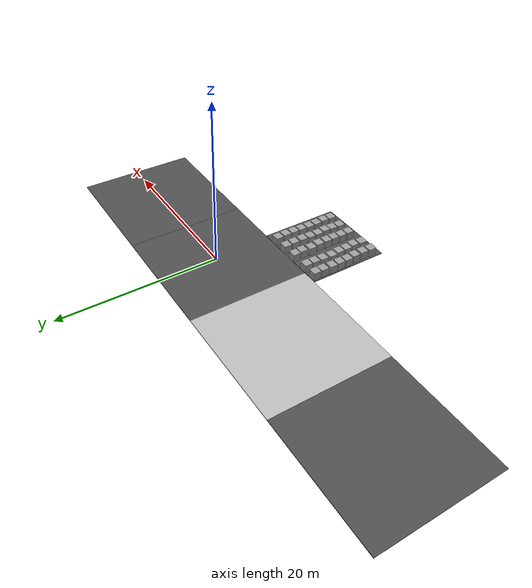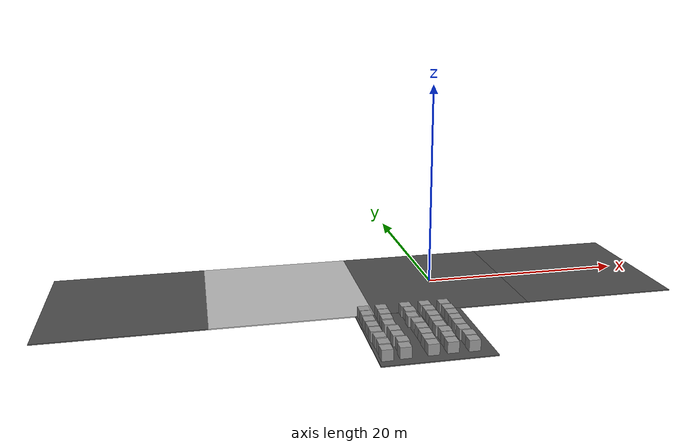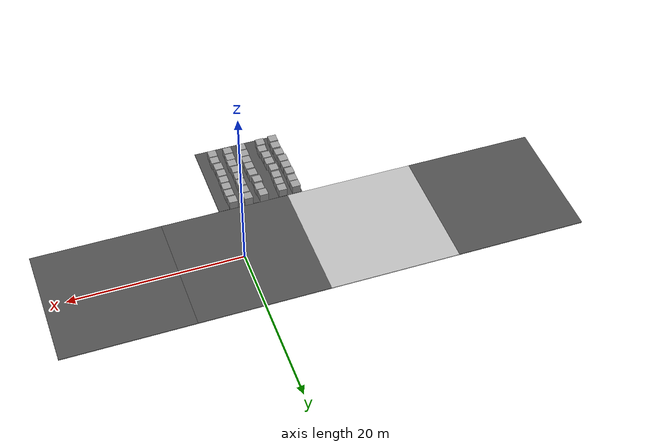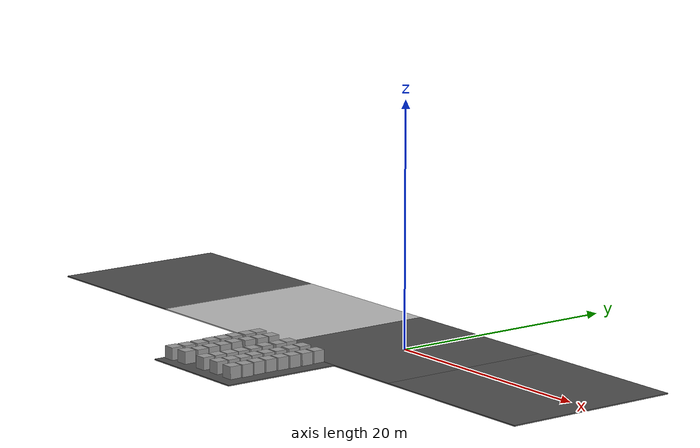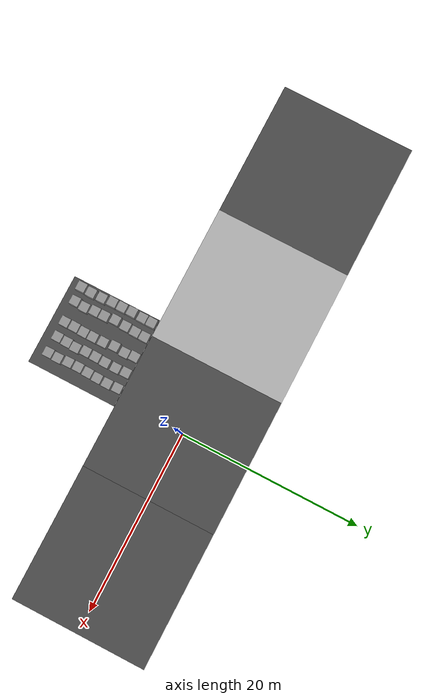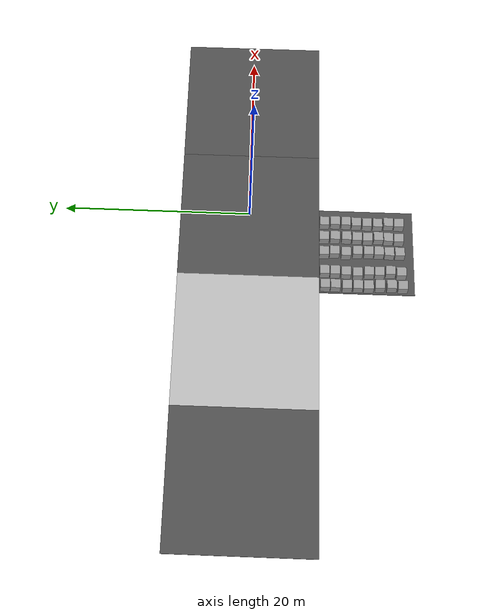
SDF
<sdf version="1.6">
 <world name="road test">
  <scene>
   <ambient>120 120 120 255</ambient>
   <sky><clouds><speed>12</speed></clouds><time>10</time></sky>
   <background>0.7 0.7 0.7 1</background>
   <shadows>1</shadows>
  </scene>
  <model name="highway_plane_15m">
   <static>1</static>
   <link name="link">
    <collision name="collision"><geometry><box><size>15 15 0.1</size></box></geometry></collision>
    <visual name="visual">
     <cast_shadows>0</cast_shadows>
     <geometry><box><size>15 15 0.1</size></box></geometry>
     <material>
      <script>
       <uri>model://highway_plane_15m/materials/scripts</uri>
       <uri>model://highway_plane_15m/materials/textures</uri>
       <name>vrc/highway_15m</name>
      </script>
     </material>
    </visual>
   </link>
   <pose>-15 0 0 0 -0 0</pose>
  </model>
  <model name="highway_plane_15m">
   <static>1</static>
   <link name="link">
    <collision name="collision"><geometry><box><size>15 15 0.1</size></box></geometry></collision>
    <visual name="visual">
     <cast_shadows>0</cast_shadows>
     <geometry><box><size>15 15 0.1</size></box></geometry>
     <material>
      <script>
       <uri>model://highway_plane_15m/materials/scripts</uri>
       <uri>model://highway_plane_15m/materials/textures</uri>
       <name>vrc/highway_15m</name>
      </script>
     </material>
    </visual>
   </link>
   <pose>-15 0 0 0 -0 0</pose>
  </model>
  <model name="highway_plane_15m">
   <static>1</static>
   <link name="link">
    <collision name="collision"><geometry><box><size>15 15 0.1</size></box></geometry></collision>
    <visual name="visual">
     <cast_shadows>0</cast_shadows>
     <geometry><box><size>15 15 0.1</size></box></geometry>
     <material>
      <script>
       <uri>model://highway_plane_15m/materials/scripts</uri>
       <uri>model://highway_plane_15m/materials/textures</uri>
       <name>vrc/highway_15m</name>
      </script>
     </material>
    </visual>
   </link>
   <pose>-15 0 0 0 -0 0</pose>
  </model>
  <model name="highway_plane_15m">
   <static>1</static>
   <link name="link">
    <collision name="collision"><geometry><box><size>15 15 0.1</size></box></geometry></collision>
    <visual name="visual">
     <cast_shadows>0</cast_shadows>
     <geometry><box><size>15 15 0.1</size></box></geometry>
     <material>
      <script>
       <uri>model://highway_plane_15m/materials/scripts</uri>
       <uri>model://highway_plane_15m/materials/textures</uri>
       <name>vrc/highway_15m</name>
      </script>
     </material>
    </visual>
   </link>
   <pose>-15 0 0 0 -0 0</pose>
  </model>
  <model name="highway_plane_15m">
   <static>1</static>
   <link name="link">
    <collision name="collision"><geometry><box><size>15 15 0.1</size></box></geometry></collision>
    <visual name="visual">
     <cast_shadows>0</cast_shadows>
     <geometry><box><size>15 15 0.1</size></box></geometry>
     <material>
      <script>
       <uri>model://highway_plane_15m/materials/scripts</uri>
       <uri>model://highway_plane_15m/materials/textures</uri>
       <name>vrc/highway_15m</name>
      </script>
     </material>
    </visual>
   </link>
   <pose>-15 0 0 0 -0 0</pose>
  </model>
  <light name="sun" type="directional">
   <pose>0 0 10 0 -0 0</pose>
   <diffuse>0.8 0.8 0.8 1</diffuse>
   <specular>0.1 0.1 0.1 1</specular>
   <attenuation>
    <range>1000</range>
    <constant>0.9</constant>
    <linear>0.01</linear>
    <quadratic>0.001</quadratic>
   </attenuation>
   <direction>-0.5 0.5 -1</direction>
  </light>
  <gravity>0 0 -9.8</gravity>
  <magnetic_field>6e-06 2.3e-05 -4.2e-05</magnetic_field>
  <atmosphere type="adiabatic"/>
  <physics name="default_physics" default="0" type="ode">
   <max_step_size>0.001</max_step_size>
   <real_time_factor>1</real_time_factor>
   <real_time_update_rate>1000</real_time_update_rate>
  </physics>
  <spherical_coordinates>
   <surface_model>EARTH_WGS84</surface_model>
   <latitude_deg>0</latitude_deg>
   <longitude_deg>0</longitude_deg>
   <elevation>0</elevation>
   <heading_deg>0</heading_deg>
  </spherical_coordinates>
  <model name="asphalt_plane">
   <static>1</static>
   <link name="link">
    <collision name="collision"><geometry><box><size>10 10 0.1</size></box></geometry></collision>
    <visual name="visual">
     <cast_shadows>0</cast_shadows>
     <geometry><box><size>10 10 0.1</size></box></geometry>
     <material>
      <script>
       <uri>model://asphalt_plane/materials/scripts</uri>
       <uri>model://asphalt_plane/materials/textures</uri>
       <name>vrc/asphalt</name>
      </script>
     </material>
    </visual>
   </link>
   <pose>-4.30239 -12.5237 0 0 -0 0</pose>
  </model>
  <model name="unit_box_0">
   <pose>-1.09581 -8.02105 0.549996 1e-06 1e-05 0.006384</pose>
   <link name="link">
    <inertial>
     <mass>1</mass>
     <inertia>
      <ixx>0.166667</ixx>
      <ixy>0</ixy>
      <ixz>0</ixz>
      <iyy>0.166667</iyy>
      <iyz>0</iyz>
      <izz>0.166667</izz>
     </inertia>
    </inertial>
    <collision name="collision"><geometry><box><size>1 1 1</size></box></geometry></collision>
    <visual name="visual">
     <geometry><box><size>1 1 1</size></box></geometry>
     <material>
      <script><name>Gazebo/Grey</name><uri>file://media/materials/scripts/gazebo.material</uri></script>
     </material>
    </visual>
   </link>
  </model>
  <model name="unit_box_1">
   <pose>-1.0275 -9.17623 0.55 0 -0 1e-05</pose>
   <link name="link">
    <inertial>
     <mass>1</mass>
     <inertia>
      <ixx>0.166667</ixx>
      <ixy>0</ixy>
      <ixz>0</ixz>
      <iyy>0.166667</iyy>
      <iyz>0</iyz>
      <izz>0.166667</izz>
     </inertia>
    </inertial>
    <collision name="collision"><geometry><box><size>1 1 1</size></box></geometry></collision>
    <visual name="visual">
     <geometry><box><size>1 1 1</size></box></geometry>
     <material>
      <script><name>Gazebo/Grey</name><uri>file://media/materials/scripts/gazebo.material</uri></script>
     </material>
    </visual>
   </link>
  </model>
  <model name="unit_box_2">
   <pose>-1.04698 -10.3266 0.55 0 -0 1e-05</pose>
   <link name="link">
    <inertial>
     <mass>1</mass>
     <inertia>
      <ixx>0.166667</ixx>
      <ixy>0</ixy>
      <ixz>0</ixz>
      <iyy>0.166667</iyy>
      <iyz>0</iyz>
      <izz>0.166667</izz>
     </inertia>
    </inertial>
    <collision name="collision"><geometry><box><size>1 1 1</size></box></geometry></collision>
    <visual name="visual">
     <geometry><box><size>1 1 1</size></box></geometry>
     <material>
      <script><name>Gazebo/Grey</name><uri>file://media/materials/scripts/gazebo.material</uri></script>
     </material>
    </visual>
   </link>
  </model>
  <model name="unit_box_3">
   <pose>-1.09509 -11.4368 0.55 0 -0 1e-05</pose>
   <link name="link">
    <inertial>
     <mass>1</mass>
     <inertia>
      <ixx>0.166667</ixx>
      <ixy>0</ixy>
      <ixz>0</ixz>
      <iyy>0.166667</iyy>
      <iyz>0</iyz>
      <izz>0.166667</izz>
     </inertia>
    </inertial>
    <collision name="collision"><geometry><box><size>1 1 1</size></box></geometry></collision>
    <visual name="visual">
     <geometry><box><size>1 1 1</size></box></geometry>
     <material>
      <script><name>Gazebo/Grey</name><uri>file://media/materials/scripts/gazebo.material</uri></script>
     </material>
    </visual>
   </link>
  </model>
  <model name="unit_box_4">
   <pose>-1.1438 -12.5689 0.55 0 -0 1e-05</pose>
   <link name="link">
    <inertial>
     <mass>1</mass>
     <inertia>
      <ixx>0.166667</ixx>
      <ixy>0</ixy>
      <ixz>0</ixz>
      <iyy>0.166667</iyy>
      <iyz>0</iyz>
      <izz>0.166667</izz>
     </inertia>
    </inertial>
    <collision name="collision"><geometry><box><size>1 1 1</size></box></geometry></collision>
    <visual name="visual">
     <geometry><box><size>1 1 1</size></box></geometry>
     <material>
      <script><name>Gazebo/Grey</name><uri>file://media/materials/scripts/gazebo.material</uri></script>
     </material>
    </visual>
   </link>
  </model>
  <model name="unit_box_5">
   <pose>-1.12849 -13.6989 0.55 0 -0 1e-05</pose>
   <link name="link">
    <inertial>
     <mass>1</mass>
     <inertia>
      <ixx>0.166667</ixx>
      <ixy>0</ixy>
      <ixz>0</ixz>
      <iyy>0.166667</iyy>
      <iyz>0</iyz>
      <izz>0.166667</izz>
     </inertia>
    </inertial>
    <collision name="collision"><geometry><box><size>1 1 1</size></box></geometry></collision>
    <visual name="visual">
     <geometry><box><size>1 1 1</size></box></geometry>
     <material>
      <script><name>Gazebo/Grey</name><uri>file://media/materials/scripts/gazebo.material</uri></script>
     </material>
    </visual>
   </link>
  </model>
  <model name="unit_box_6">
   <pose>-1.01815 -14.8621 0.55 0 -0 1e-05</pose>
   <link name="link">
    <inertial>
     <mass>1</mass>
     <inertia>
      <ixx>0.166667</ixx>
      <ixy>0</ixy>
      <ixz>0</ixz>
      <iyy>0.166667</iyy>
      <iyz>0</iyz>
      <izz>0.166667</izz>
     </inertia>
    </inertial>
    <collision name="collision"><geometry><box><size>1 1 1</size></box></geometry></collision>
    <visual name="visual">
     <geometry><box><size>1 1 1</size></box></geometry>
     <material>
      <script><name>Gazebo/Grey</name><uri>file://media/materials/scripts/gazebo.material</uri></script>
     </material>
    </visual>
   </link>
  </model>
  <model name="unit_box_7">
   <pose>-1.06504 -15.9688 0.55 0 -0 1e-05</pose>
   <link name="link">
    <inertial>
     <mass>1</mass>
     <inertia>
      <ixx>0.166667</ixx>
      <ixy>0</ixy>
      <ixz>0</ixz>
      <iyy>0.166667</iyy>
      <iyz>0</iyz>
      <izz>0.166667</izz>
     </inertia>
    </inertial>
    <collision name="collision"><geometry><box><size>1 1 1</size></box></geometry></collision>
    <visual name="visual">
     <geometry><box><size>1 1 1</size></box></geometry>
     <material>
      <script><name>Gazebo/Grey</name><uri>file://media/materials/scripts/gazebo.material</uri></script>
     </material>
    </visual>
   </link>
  </model>
  <model name="unit_box_8">
   <pose>-2.89118 -7.99853 0.55 0 -0 4.4e-05</pose>
   <link name="link">
    <inertial>
     <mass>1</mass>
     <inertia>
      <ixx>0.166667</ixx>
      <ixy>0</ixy>
      <ixz>0</ixz>
      <iyy>0.166667</iyy>
      <iyz>0</iyz>
      <izz>0.166667</izz>
     </inertia>
    </inertial>
    <collision name="collision"><geometry><box><size>1 1 1</size></box></geometry></collision>
    <visual name="visual">
     <geometry><box><size>1 1 1</size></box></geometry>
     <material>
      <script><name>Gazebo/Grey</name><uri>file://media/materials/scripts/gazebo.material</uri></script>
     </material>
    </visual>
   </link>
  </model>
  <model name="unit_box_9">
   <pose>-2.83189 -9.14472 0.55 0 -0 1e-05</pose>
   <link name="link">
    <inertial>
     <mass>1</mass>
     <inertia>
      <ixx>0.166667</ixx>
      <ixy>0</ixy>
      <ixz>0</ixz>
      <iyy>0.166667</iyy>
      <iyz>0</iyz>
      <izz>0.166667</izz>
     </inertia>
    </inertial>
    <collision name="collision"><geometry><box><size>1 1 1</size></box></geometry></collision>
    <visual name="visual">
     <geometry><box><size>1 1 1</size></box></geometry>
     <material>
      <script><name>Gazebo/Grey</name><uri>file://media/materials/scripts/gazebo.material</uri></script>
     </material>
    </visual>
   </link>
  </model>
  <model name="unit_box_10">
   <pose>-2.83388 -10.3663 0.55 0 -0 1e-05</pose>
   <link name="link">
    <inertial>
     <mass>1</mass>
     <inertia>
      <ixx>0.166667</ixx>
      <ixy>0</ixy>
      <ixz>0</ixz>
      <iyy>0.166667</iyy>
      <iyz>0</iyz>
      <izz>0.166667</izz>
     </inertia>
    </inertial>
    <collision name="collision"><geometry><box><size>1 1 1</size></box></geometry></collision>
    <visual name="visual">
     <geometry><box><size>1 1 1</size></box></geometry>
     <material>
      <script><name>Gazebo/Grey</name><uri>file://media/materials/scripts/gazebo.material</uri></script>
     </material>
    </visual>
   </link>
  </model>
  <model name="unit_box_11">
   <pose>-2.88583 -11.4916 0.55 0 -0 1e-05</pose>
   <link name="link">
    <inertial>
     <mass>1</mass>
     <inertia>
      <ixx>0.166667</ixx>
      <ixy>0</ixy>
      <ixz>0</ixz>
      <iyy>0.166667</iyy>
      <iyz>0</iyz>
      <izz>0.166667</izz>
     </inertia>
    </inertial>
    <collision name="collision"><geometry><box><size>1 1 1</size></box></geometry></collision>
    <visual name="visual">
     <geometry><box><size>1 1 1</size></box></geometry>
     <material>
      <script><name>Gazebo/Grey</name><uri>file://media/materials/scripts/gazebo.material</uri></script>
     </material>
    </visual>
   </link>
  </model>
  <model name="unit_box_12">
   <pose>-2.91022 -12.6251 0.55 0 -0 1e-05</pose>
   <link name="link">
    <inertial>
     <mass>1</mass>
     <inertia>
      <ixx>0.166667</ixx>
      <ixy>0</ixy>
      <ixz>0</ixz>
      <iyy>0.166667</iyy>
      <iyz>0</iyz>
      <izz>0.166667</izz>
     </inertia>
    </inertial>
    <collision name="collision"><geometry><box><size>1 1 1</size></box></geometry></collision>
    <visual name="visual">
     <geometry><box><size>1 1 1</size></box></geometry>
     <material>
      <script><name>Gazebo/Grey</name><uri>file://media/materials/scripts/gazebo.material</uri></script>
     </material>
    </visual>
   </link>
  </model>
  <model name="unit_box_13">
   <pose>-2.78929 -13.763 0.55 0 -0 1e-05</pose>
   <link name="link">
    <inertial>
     <mass>1</mass>
     <inertia>
      <ixx>0.166667</ixx>
      <ixy>0</ixy>
      <ixz>0</ixz>
      <iyy>0.166667</iyy>
      <iyz>0</iyz>
      <izz>0.166667</izz>
     </inertia>
    </inertial>
    <collision name="collision"><geometry><box><size>1 1 1</size></box></geometry></collision>
    <visual name="visual">
     <geometry><box><size>1 1 1</size></box></geometry>
     <material>
      <script><name>Gazebo/Grey</name><uri>file://media/materials/scripts/gazebo.material</uri></script>
     </material>
    </visual>
   </link>
  </model>
  <model name="unit_box_14">
   <pose>-2.86553 -14.8187 0.55 0 -0 1e-05</pose>
   <link name="link">
    <inertial>
     <mass>1</mass>
     <inertia>
      <ixx>0.166667</ixx>
      <ixy>0</ixy>
      <ixz>0</ixz>
      <iyy>0.166667</iyy>
      <iyz>0</iyz>
      <izz>0.166667</izz>
     </inertia>
    </inertial>
    <collision name="collision"><geometry><box><size>1 1 1</size></box></geometry></collision>
    <visual name="visual">
     <geometry><box><size>1 1 1</size></box></geometry>
     <material>
      <script><name>Gazebo/Grey</name><uri>file://media/materials/scripts/gazebo.material</uri></script>
     </material>
    </visual>
   </link>
  </model>
  <model name="unit_box_15">
   <pose>-2.91565 -15.9209 0.55 0 -0 1e-05</pose>
   <link name="link">
    <inertial>
     <mass>1</mass>
     <inertia>
      <ixx>0.166667</ixx>
      <ixy>0</ixy>
      <ixz>0</ixz>
      <iyy>0.166667</iyy>
      <iyz>0</iyz>
      <izz>0.166667</izz>
     </inertia>
    </inertial>
    <collision name="collision"><geometry><box><size>1 1 1</size></box></geometry></collision>
    <visual name="visual">
     <geometry><box><size>1 1 1</size></box></geometry>
     <material>
      <script><name>Gazebo/Grey</name><uri>file://media/materials/scripts/gazebo.material</uri></script>
     </material>
    </visual>
   </link>
  </model>
  <model name="unit_box_16">
   <pose>-4.72709 -7.99245 0.55 0 0 -2.9e-05</pose>
   <link name="link">
    <inertial>
     <mass>1</mass>
     <inertia>
      <ixx>0.166667</ixx>
      <ixy>0</ixy>
      <ixz>0</ixz>
      <iyy>0.166667</iyy>
      <iyz>0</iyz>
      <izz>0.166667</izz>
     </inertia>
    </inertial>
    <collision name="collision"><geometry><box><size>1 1 1</size></box></geometry></collision>
    <visual name="visual">
     <geometry><box><size>1 1 1</size></box></geometry>
     <material>
      <script><name>Gazebo/Grey</name><uri>file://media/materials/scripts/gazebo.material</uri></script>
     </material>
    </visual>
   </link>
  </model>
  <model name="unit_box_17">
   <pose>-4.62828 -9.07829 0.55 0 -0 1e-05</pose>
   <link name="link">
    <inertial>
     <mass>1</mass>
     <inertia>
      <ixx>0.166667</ixx>
      <ixy>0</ixy>
      <ixz>0</ixz>
      <iyy>0.166667</iyy>
      <iyz>0</iyz>
      <izz>0.166667</izz>
     </inertia>
    </inertial>
    <collision name="collision"><geometry><box><size>1 1 1</size></box></geometry></collision>
    <visual name="visual">
     <geometry><box><size>1 1 1</size></box></geometry>
     <material>
      <script><name>Gazebo/Grey</name><uri>file://media/materials/scripts/gazebo.material</uri></script>
     </material>
    </visual>
   </link>
  </model>
  <model name="unit_box_18">
   <pose>-4.74171 -10.3008 0.55 0 -0 1e-05</pose>
   <link name="link">
    <inertial>
     <mass>1</mass>
     <inertia>
      <ixx>0.166667</ixx>
      <ixy>0</ixy>
      <ixz>0</ixz>
      <iyy>0.166667</iyy>
      <iyz>0</iyz>
      <izz>0.166667</izz>
     </inertia>
    </inertial>
    <collision name="collision"><geometry><box><size>1 1 1</size></box></geometry></collision>
    <visual name="visual">
     <geometry><box><size>1 1 1</size></box></geometry>
     <material>
      <script><name>Gazebo/Grey</name><uri>file://media/materials/scripts/gazebo.material</uri></script>
     </material>
    </visual>
   </link>
  </model>
  <model name="unit_box_19">
   <pose>-4.57431 -11.5252 0.55 0 -0 1e-05</pose>
   <link name="link">
    <inertial>
     <mass>1</mass>
     <inertia>
      <ixx>0.166667</ixx>
      <ixy>0</ixy>
      <ixz>0</ixz>
      <iyy>0.166667</iyy>
      <iyz>0</iyz>
      <izz>0.166667</izz>
     </inertia>
    </inertial>
    <collision name="collision"><geometry><box><size>1 1 1</size></box></geometry></collision>
    <visual name="visual">
     <geometry><box><size>1 1 1</size></box></geometry>
     <material>
      <script><name>Gazebo/Grey</name><uri>file://media/materials/scripts/gazebo.material</uri></script>
     </material>
    </visual>
   </link>
  </model>
  <model name="unit_box_20">
   <pose>-4.55516 -12.6984 0.55 0 -0 1e-05</pose>
   <link name="link">
    <inertial>
     <mass>1</mass>
     <inertia>
      <ixx>0.166667</ixx>
      <ixy>0</ixy>
      <ixz>0</ixz>
      <iyy>0.166667</iyy>
      <iyz>0</iyz>
      <izz>0.166667</izz>
     </inertia>
    </inertial>
    <collision name="collision"><geometry><box><size>1 1 1</size></box></geometry></collision>
    <visual name="visual">
     <geometry><box><size>1 1 1</size></box></geometry>
     <material>
      <script><name>Gazebo/Grey</name><uri>file://media/materials/scripts/gazebo.material</uri></script>
     </material>
    </visual>
   </link>
  </model>
  <model name="unit_box_21">
   <pose>-4.55515 -13.7852 0.55 0 -0 1e-05</pose>
   <link name="link">
    <inertial>
     <mass>1</mass>
     <inertia>
      <ixx>0.166667</ixx>
      <ixy>0</ixy>
      <ixz>0</ixz>
      <iyy>0.166667</iyy>
      <iyz>0</iyz>
      <izz>0.166667</izz>
     </inertia>
    </inertial>
    <collision name="collision"><geometry><box><size>1 1 1</size></box></geometry></collision>
    <visual name="visual">
     <geometry><box><size>1 1 1</size></box></geometry>
     <material>
      <script><name>Gazebo/Grey</name><uri>file://media/materials/scripts/gazebo.material</uri></script>
     </material>
    </visual>
   </link>
  </model>
  <model name="unit_box_22">
   <pose>-4.60754 -14.8791 0.55 0 -0 1e-05</pose>
   <link name="link">
    <inertial>
     <mass>1</mass>
     <inertia>
      <ixx>0.166667</ixx>
      <ixy>0</ixy>
      <ixz>0</ixz>
      <iyy>0.166667</iyy>
      <iyz>0</iyz>
      <izz>0.166667</izz>
     </inertia>
    </inertial>
    <collision name="collision"><geometry><box><size>1 1 1</size></box></geometry></collision>
    <visual name="visual">
     <geometry><box><size>1 1 1</size></box></geometry>
     <material>
      <script><name>Gazebo/Grey</name><uri>file://media/materials/scripts/gazebo.material</uri></script>
     </material>
    </visual>
   </link>
  </model>
  <model name="unit_box_23">
   <pose>-4.60951 -15.9922 0.55 0 -0 1e-05</pose>
   <link name="link">
    <inertial>
     <mass>1</mass>
     <inertia>
      <ixx>0.166667</ixx>
      <ixy>0</ixy>
      <ixz>0</ixz>
      <iyy>0.166667</iyy>
      <iyz>0</iyz>
      <izz>0.166667</izz>
     </inertia>
    </inertial>
    <collision name="collision"><geometry><box><size>1 1 1</size></box></geometry></collision>
    <visual name="visual">
     <geometry><box><size>1 1 1</size></box></geometry>
     <material>
      <script><name>Gazebo/Grey</name><uri>file://media/materials/scripts/gazebo.material</uri></script>
     </material>
    </visual>
   </link>
  </model>
  <model name="unit_box_24">
   <pose>-7.00154 -8.04263 0.55 0 -0 1e-05</pose>
   <link name="link">
    <inertial>
     <mass>1</mass>
     <inertia>
      <ixx>0.166667</ixx>
      <ixy>0</ixy>
      <ixz>0</ixz>
      <iyy>0.166667</iyy>
      <iyz>0</iyz>
      <izz>0.166667</izz>
     </inertia>
    </inertial>
    <collision name="collision"><geometry><box><size>1 1 1</size></box></geometry></collision>
    <visual name="visual">
     <geometry><box><size>1 1 1</size></box></geometry>
     <material>
      <script><name>Gazebo/Grey</name><uri>file://media/materials/scripts/gazebo.material</uri></script>
     </material>
    </visual>
   </link>
  </model>
  <model name="unit_box_25">
   <pose>-7.01466 -9.13049 0.55 0 -0 1e-05</pose>
   <link name="link">
    <inertial>
     <mass>1</mass>
     <inertia>
      <ixx>0.166667</ixx>
      <ixy>0</ixy>
      <ixz>0</ixz>
      <iyy>0.166667</iyy>
      <iyz>0</iyz>
      <izz>0.166667</izz>
     </inertia>
    </inertial>
    <collision name="collision"><geometry><box><size>1 1 1</size></box></geometry></collision>
    <visual name="visual">
     <geometry><box><size>1 1 1</size></box></geometry>
     <material>
      <script><name>Gazebo/Grey</name><uri>file://media/materials/scripts/gazebo.material</uri></script>
     </material>
    </visual>
   </link>
  </model>
  <model name="unit_box_26">
   <pose>-7.07572 -10.2798 0.55 0 -0 1e-05</pose>
   <link name="link">
    <inertial>
     <mass>1</mass>
     <inertia>
      <ixx>0.166667</ixx>
      <ixy>0</ixy>
      <ixz>0</ixz>
      <iyy>0.166667</iyy>
      <iyz>0</iyz>
      <izz>0.166667</izz>
     </inertia>
    </inertial>
    <collision name="collision"><geometry><box><size>1 1 1</size></box></geometry></collision>
    <visual name="visual">
     <geometry><box><size>1 1 1</size></box></geometry>
     <material>
      <script><name>Gazebo/Grey</name><uri>file://media/materials/scripts/gazebo.material</uri></script>
     </material>
    </visual>
   </link>
  </model>
  <model name="unit_box_27">
   <pose>-7.16392 -11.5056 0.55 0 -0 1e-05</pose>
   <link name="link">
    <inertial>
     <mass>1</mass>
     <inertia>
      <ixx>0.166667</ixx>
      <ixy>0</ixy>
      <ixz>0</ixz>
      <iyy>0.166667</iyy>
      <iyz>0</iyz>
      <izz>0.166667</izz>
     </inertia>
    </inertial>
    <collision name="collision"><geometry><box><size>1 1 1</size></box></geometry></collision>
    <visual name="visual">
     <geometry><box><size>1 1 1</size></box></geometry>
     <material>
      <script><name>Gazebo/Grey</name><uri>file://media/materials/scripts/gazebo.material</uri></script>
     </material>
    </visual>
   </link>
  </model>
  <model name="unit_box_28">
   <pose>-7.01093 -12.6974 0.55 0 -0 1e-05</pose>
   <link name="link">
    <inertial>
     <mass>1</mass>
     <inertia>
      <ixx>0.166667</ixx>
      <ixy>0</ixy>
      <ixz>0</ixz>
      <iyy>0.166667</iyy>
      <iyz>0</iyz>
      <izz>0.166667</izz>
     </inertia>
    </inertial>
    <collision name="collision"><geometry><box><size>1 1 1</size></box></geometry></collision>
    <visual name="visual">
     <geometry><box><size>1 1 1</size></box></geometry>
     <material>
      <script><name>Gazebo/Grey</name><uri>file://media/materials/scripts/gazebo.material</uri></script>
     </material>
    </visual>
   </link>
  </model>
  <model name="unit_box_29">
   <pose>-7.00257 -13.7991 0.55 0 -0 1e-05</pose>
   <link name="link">
    <inertial>
     <mass>1</mass>
     <inertia>
      <ixx>0.166667</ixx>
      <ixy>0</ixy>
      <ixz>0</ixz>
      <iyy>0.166667</iyy>
      <iyz>0</iyz>
      <izz>0.166667</izz>
     </inertia>
    </inertial>
    <collision name="collision"><geometry><box><size>1 1 1</size></box></geometry></collision>
    <visual name="visual">
     <geometry><box><size>1 1 1</size></box></geometry>
     <material>
      <script><name>Gazebo/Grey</name><uri>file://media/materials/scripts/gazebo.material</uri></script>
     </material>
    </visual>
   </link>
  </model>
  <model name="unit_box_30">
   <pose>-6.86328 -14.9526 0.55 0 -0 1e-05</pose>
   <link name="link">
    <inertial>
     <mass>1</mass>
     <inertia>
      <ixx>0.166667</ixx>
      <ixy>0</ixy>
      <ixz>0</ixz>
      <iyy>0.166667</iyy>
      <iyz>0</iyz>
      <izz>0.166667</izz>
     </inertia>
    </inertial>
    <collision name="collision"><geometry><box><size>1 1 1</size></box></geometry></collision>
    <visual name="visual">
     <geometry><box><size>1 1 1</size></box></geometry>
     <material>
      <script><name>Gazebo/Grey</name><uri>file://media/materials/scripts/gazebo.material</uri></script>
     </material>
    </visual>
   </link>
  </model>
  <model name="unit_box_31">
   <pose>-6.98951 -16.0888 0.55 0 -0 1e-05</pose>
   <link name="link">
    <inertial>
     <mass>1</mass>
     <inertia>
      <ixx>0.166667</ixx>
      <ixy>0</ixy>
      <ixz>0</ixz>
      <iyy>0.166667</iyy>
      <iyz>0</iyz>
      <izz>0.166667</izz>
     </inertia>
    </inertial>
    <collision name="collision"><geometry><box><size>1 1 1</size></box></geometry></collision>
    <visual name="visual">
     <geometry><box><size>1 1 1</size></box></geometry>
     <material>
      <script><name>Gazebo/Grey</name><uri>file://media/materials/scripts/gazebo.material</uri></script>
     </material>
    </visual>
   </link>
  </model>
  <model name="unit_box_32">
   <pose>-8.63661 -8.08772 0.55 0 -0 1e-05</pose>
   <link name="link">
    <inertial>
     <mass>1</mass>
     <inertia>
      <ixx>0.166667</ixx>
      <ixy>0</ixy>
      <ixz>0</ixz>
      <iyy>0.166667</iyy>
      <iyz>0</iyz>
      <izz>0.166667</izz>
     </inertia>
    </inertial>
    <collision name="collision"><geometry><box><size>1 1 1</size></box></geometry></collision>
    <visual name="visual">
     <geometry><box><size>1 1 1</size></box></geometry>
     <material>
      <script><name>Gazebo/Grey</name><uri>file://media/materials/scripts/gazebo.material</uri></script>
     </material>
    </visual>
   </link>
  </model>
  <model name="unit_box_33">
   <pose>-8.63784 -9.15885 0.55 0 -0 1e-05</pose>
   <link name="link">
    <inertial>
     <mass>1</mass>
     <inertia>
      <ixx>0.166667</ixx>
      <ixy>0</ixy>
      <ixz>0</ixz>
      <iyy>0.166667</iyy>
      <iyz>0</iyz>
      <izz>0.166667</izz>
     </inertia>
    </inertial>
    <collision name="collision"><geometry><box><size>1 1 1</size></box></geometry></collision>
    <visual name="visual">
     <geometry><box><size>1 1 1</size></box></geometry>
     <material>
      <script><name>Gazebo/Grey</name><uri>file://media/materials/scripts/gazebo.material</uri></script>
     </material>
    </visual>
   </link>
  </model>
  <model name="unit_box_34">
   <pose>-8.68749 -10.3793 0.55 0 -0 1e-05</pose>
   <link name="link">
    <inertial>
     <mass>1</mass>
     <inertia>
      <ixx>0.166667</ixx>
      <ixy>0</ixy>
      <ixz>0</ixz>
      <iyy>0.166667</iyy>
      <iyz>0</iyz>
      <izz>0.166667</izz>
     </inertia>
    </inertial>
    <collision name="collision"><geometry><box><size>1 1 1</size></box></geometry></collision>
    <visual name="visual">
     <geometry><box><size>1 1 1</size></box></geometry>
     <material>
      <script><name>Gazebo/Grey</name><uri>file://media/materials/scripts/gazebo.material</uri></script>
     </material>
    </visual>
   </link>
  </model>
  <model name="unit_box_35">
   <pose>-8.65387 -11.5159 0.55 0 -0 1e-05</pose>
   <link name="link">
    <inertial>
     <mass>1</mass>
     <inertia>
      <ixx>0.166667</ixx>
      <ixy>0</ixy>
      <ixz>0</ixz>
      <iyy>0.166667</iyy>
      <iyz>0</iyz>
      <izz>0.166667</izz>
     </inertia>
    </inertial>
    <collision name="collision"><geometry><box><size>1 1 1</size></box></geometry></collision>
    <visual name="visual">
     <geometry><box><size>1 1 1</size></box></geometry>
     <material>
      <script><name>Gazebo/Grey</name><uri>file://media/materials/scripts/gazebo.material</uri></script>
     </material>
    </visual>
   </link>
  </model>
  <model name="unit_box_36">
   <pose>-8.65727 -12.6366 0.55 0 -0 1e-05</pose>
   <link name="link">
    <inertial>
     <mass>1</mass>
     <inertia>
      <ixx>0.166667</ixx>
      <ixy>0</ixy>
      <ixz>0</ixz>
      <iyy>0.166667</iyy>
      <iyz>0</iyz>
      <izz>0.166667</izz>
     </inertia>
    </inertial>
    <collision name="collision"><geometry><box><size>1 1 1</size></box></geometry></collision>
    <visual name="visual">
     <geometry><box><size>1 1 1</size></box></geometry>
     <material>
      <script><name>Gazebo/Grey</name><uri>file://media/materials/scripts/gazebo.material</uri></script>
     </material>
    </visual>
   </link>
  </model>
  <model name="unit_box_37">
   <pose>-8.54645 -13.816 0.55 0 -0 1e-05</pose>
   <link name="link">
    <inertial>
     <mass>1</mass>
     <inertia>
      <ixx>0.166667</ixx>
      <ixy>0</ixy>
      <ixz>0</ixz>
      <iyy>0.166667</iyy>
      <iyz>0</iyz>
      <izz>0.166667</izz>
     </inertia>
    </inertial>
    <collision name="collision"><geometry><box><size>1 1 1</size></box></geometry></collision>
    <visual name="visual">
     <geometry><box><size>1 1 1</size></box></geometry>
     <material>
      <script><name>Gazebo/Grey</name><uri>file://media/materials/scripts/gazebo.material</uri></script>
     </material>
    </visual>
   </link>
  </model>
  <model name="unit_box_38">
   <pose>-8.51582 -15.0461 0.55 0 -0 1e-05</pose>
   <link name="link">
    <inertial>
     <mass>1</mass>
     <inertia>
      <ixx>0.166667</ixx>
      <ixy>0</ixy>
      <ixz>0</ixz>
      <iyy>0.166667</iyy>
      <iyz>0</iyz>
      <izz>0.166667</izz>
     </inertia>
    </inertial>
    <collision name="collision"><geometry><box><size>1 1 1</size></box></geometry></collision>
    <visual name="visual">
     <geometry><box><size>1 1 1</size></box></geometry>
     <material>
      <script><name>Gazebo/Grey</name><uri>file://media/materials/scripts/gazebo.material</uri></script>
     </material>
    </visual>
   </link>
  </model>
  <model name="unit_box_39">
   <pose>-8.5792 -16.2011 0.55 0 -0 1e-05</pose>
   <link name="link">
    <inertial>
     <mass>1</mass>
     <inertia>
      <ixx>0.166667</ixx>
      <ixy>0</ixy>
      <ixz>0</ixz>
      <iyy>0.166667</iyy>
      <iyz>0</iyz>
      <izz>0.166667</izz>
     </inertia>
    </inertial>
    <collision name="collision"><geometry><box><size>1 1 1</size></box></geometry></collision>
    <visual name="visual">
     <geometry><box><size>1 1 1</size></box></geometry>
     <material>
      <script><name>Gazebo/Grey</name><uri>file://media/materials/scripts/gazebo.material</uri></script>
     </material>
    </visual>
   </link>
  </model>
  <model name="asphalt_plane_15m">
   <static>1</static>
   <link name="link">
    <collision name="collision"><geometry><box><size>15 15 0.1</size></box></geometry></collision>
    <visual name="visual">
     <cast_shadows>0</cast_shadows>
     <geometry><box><size>15 15 0.1</size></box></geometry>
     <material>
      <script>
       <uri>model://asphalt_plane_15m/materials/scripts</uri>
       <uri>model://asphalt_plane_15m/materials/textures</uri>
       <name>vrc/asphalt_15m</name>
      </script>
     </material>
    </visual>
   </link>
  </model>
  <model name="asphalt_plane_15m_0">
   <static>1</static>
   <link name="link">
    <collision name="collision"><geometry><box><size>15 15 0.1</size></box></geometry></collision>
    <visual name="visual">
     <cast_shadows>0</cast_shadows>
     <geometry><box><size>15 15 0.1</size></box></geometry>
     <material>
      <script>
       <uri>model://asphalt_plane_15m/materials/scripts</uri>
       <uri>model://asphalt_plane_15m/materials/textures</uri>
       <name>vrc/asphalt_15m</name>
      </script>
     </material>
    </visual>
   </link>
   <pose>15 0 0 0 -0 0</pose>
  </model>
  <model name="asphalt_plane_15m_1">
   <static>1</static>
   <link name="link">
    <collision name="collision"><geometry><box><size>15 15 0.1</size></box></geometry></collision>
    <visual name="visual">
     <cast_shadows>0</cast_shadows>
     <geometry><box><size>15 15 0.1</size></box></geometry>
     <material>
      <script>
       <uri>model://asphalt_plane_15m/materials/scripts</uri>
       <uri>model://asphalt_plane_15m/materials/textures</uri>
       <name>vrc/asphalt_15m</name>
      </script>
     </material>
    </visual>
   </link>
   <pose>-30 0 0 0 -0 0</pose>
  </model>
 </world>
</sdf>
